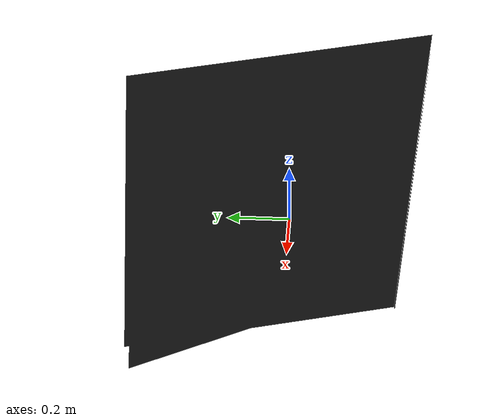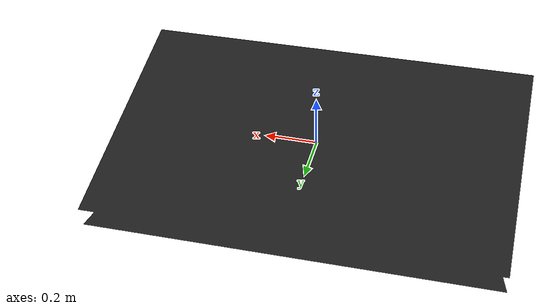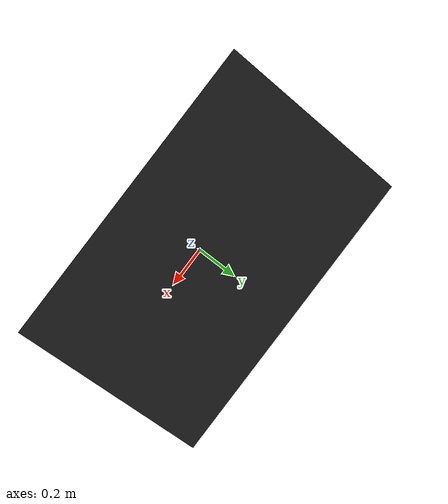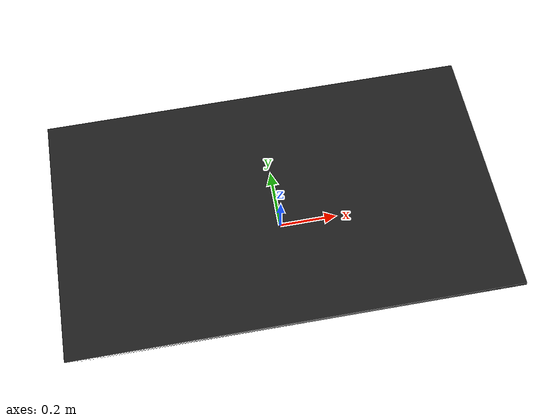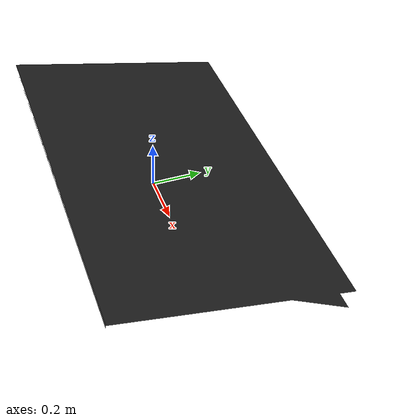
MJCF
<mujoco model="new-0">
  <default>
    <default class="visual">
      <geom group="2" type="mesh" contype="0" conaffinity="0"/>
    </default>
    <default class="collision">
      <geom group="3" type="mesh"/>
    </default>
  </default>
  <asset>
    <material name="material-0" specular="0.06666666666666667" shininess="0.03" rgba="0.11372549019607843 0.11372549019607843 0.11372549019607843 1"/>
    <mesh file="new-0.obj"/>
  </asset>
  <worldbody>
    <body name="new-0">
      <geom material="material-0" mesh="new-0" class="visual"/>
      <geom mesh="new-0" class="collision"/>
    </body>
  </worldbody>
</mujoco>
